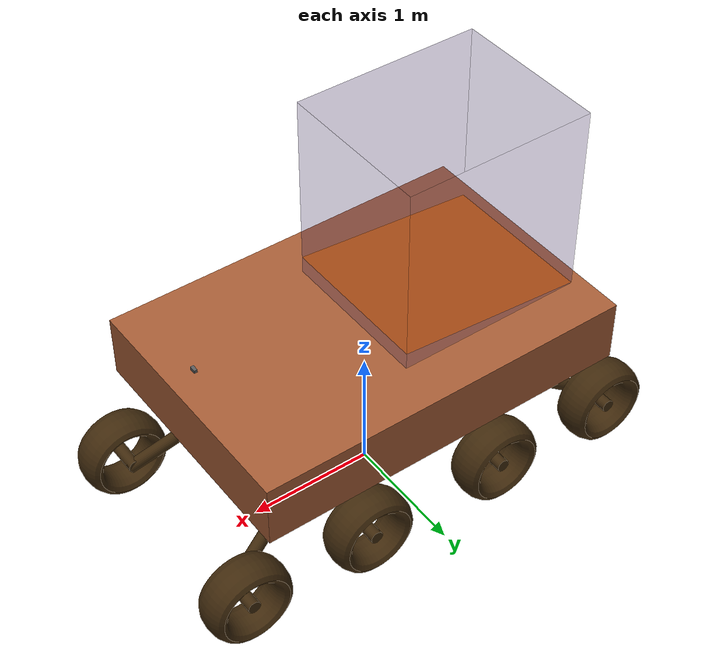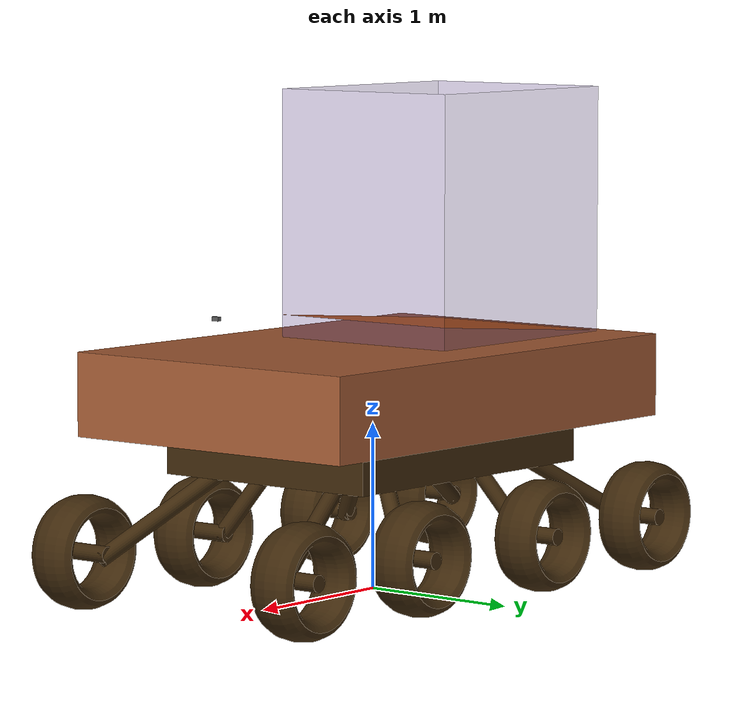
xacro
<?xml version="1.0"?>
<!-- created with Phobos 1.0.1 "Capricious Choutengan" -->
<robot name="robot" xmlns:xacro="http://wiki.ros.org/xacro">

    <link name="box_botton">
      <inertial>
        <origin xyz="0 0 0" rpy="0 0 0"/>
        <mass value="100.0"/>
        <inertia ixx="0.001" ixy="0" ixz="0" iyy="0.001" iyz="0" izz="0.001"/>
      </inertial>
      <visual name="Cube.001">
        <origin xyz="0 0 0" rpy="0 0 0"/>
        <geometry>
          <box size="2.0 1.5 0.5"/>
        </geometry>
        <material name="Material.001"/>
      </visual>
      <collision name="Cube.001">
        <origin xyz="0 0 0" rpy="0 0 0"/>
        <geometry>
          <box size="2.0 1.5 0.5"/>
        </geometry>
      </collision>
    </link>

    <link name="base_link">
      <inertial>
        <origin xyz="0 0 0" rpy="0 0 0"/>
        <mass value="150.0"/>
        <inertia ixx="0.001" ixy="0" ixz="0" iyy="0.001" iyz="0" izz="0.001"/>
      </inertial>
      <visual name="Cube">
        <origin xyz="0 0 0" rpy="0 0 0"/>
        <geometry>
          <box size="3.0 2.0 0.5"/>
        </geometry>
        <material name="Material"/>
      </visual>
      <collision name="Cube">
        <origin xyz="0 0 0" rpy="0 0 0"/>
        <geometry>
          <box size="3.0 2.0 0.5"/>
        </geometry>
      </collision>
    </link>

    <link name="base_footprint">
      <inertial>
        <origin xyz="0 0 0" rpy="0 0 0"/>
        <mass value="0.1"/>
        <inertia ixx="0.001" ixy="0" ixz="0" iyy="0.001" iyz="0" izz="0.001"/>
      </inertial>
    </link>

    <link name="c2_felt_front_back_">
      <inertial>
        <origin xyz="0 0 0" rpy="0 0 0"/>
        <mass value="1.5"/>
        <inertia ixx="0.001" ixy="0" ixz="0" iyy="0.001" iyz="0" izz="0.001"/>
      </inertial>
      <visual name="left_front_back2">
        <origin xyz="0 0 0" rpy="0 0 0"/>
        <geometry>
          <cylinder radius="0.05" length="0.3"/>
        </geometry>
        <material name="Material.001"/>
      </visual>
      <collision name="left_front_back2">
        <origin xyz="0 0 0" rpy="0 0 0"/>
        <geometry>
          <box size="0.1 0.1 0.3"/>
        </geometry>
      </collision>
    </link>

    <link name="c2_left_back_back_">
      <inertial>
        <origin xyz="0 0 0" rpy="0 0 0"/>
        <mass value="1.5"/>
        <inertia ixx="0.001" ixy="0" ixz="0" iyy="0.001" iyz="0" izz="0.001"/>
      </inertial>
      <visual name="left_back_back2">
        <origin xyz="0 0 0" rpy="0 0 0"/>
        <geometry>
          <cylinder radius="0.05" length="0.3"/>
        </geometry>
        <material name="Material.001"/>
      </visual>
      <collision name="left_back_back2">
        <origin xyz="0 0 0" rpy="0 0 0"/>
        <geometry>
          <box size="0.1 0.1 0.3"/>
        </geometry>
      </collision>
    </link>

    <link name="c2_left_back_front_">
      <inertial>
        <origin xyz="0 0 0" rpy="0 0 0"/>
        <mass value="1.5"/>
        <inertia ixx="0.001" ixy="0" ixz="0" iyy="0.001" iyz="0" izz="0.001"/>
      </inertial>
      <visual name="left_back_front2">
        <origin xyz="0 0 0" rpy="0 0 0"/>
        <geometry>
          <cylinder radius="0.05" length="0.3"/>
        </geometry>
        <material name="Material.001"/>
      </visual>
      <collision name="left_back_front2">
        <origin xyz="0 0 0" rpy="0 0 0"/>
        <geometry>
          <box size="0.1 0.1 0.3"/>
        </geometry>
      </collision>
    </link>

    <link name="c2_left_front_front_">
      <inertial>
        <origin xyz="0 0 0" rpy="0 0 0"/>
        <mass value="1.5"/>
        <inertia ixx="0.001" ixy="0" ixz="0" iyy="0.001" iyz="0" izz="0.001"/>
      </inertial>
      <visual name="left_front_front2">
        <origin xyz="0 0 0" rpy="0 0 0"/>
        <geometry>
          <cylinder radius="0.05" length="0.3"/>
        </geometry>
        <material name="Material.001"/>
      </visual>
      <collision name="left_front_front2">
        <origin xyz="0 0 0" rpy="0 0 0"/>
        <geometry>
          <box size="0.1 0.1 0.3"/>
        </geometry>
      </collision>
    </link>

    <link name="c2_right_back_back">
      <inertial>
        <origin xyz="0 0 0" rpy="0 0 0"/>
        <mass value="1.5"/>
        <inertia ixx="0.001" ixy="0" ixz="0" iyy="0.001" iyz="0" izz="0.001"/>
      </inertial>
      <visual name="right_back_back2">
        <origin xyz="0 0 0" rpy="-3.14159 0 0"/>
        <geometry>
          <cylinder radius="0.05" length="0.3"/>
        </geometry>
        <material name="Material.001"/>
      </visual>
      <collision name="right_back_back2">
        <origin xyz="0 0 0" rpy="-3.14159 0 0"/>
        <geometry>
          <box size="0.1 0.1 0.3"/>
        </geometry>
      </collision>
    </link>

    <link name="c2_right_back_front">
      <inertial>
        <origin xyz="0 0 0" rpy="0 0 0"/>
        <mass value="1.5"/>
        <inertia ixx="0.001" ixy="0" ixz="0" iyy="0.001" iyz="0" izz="0.001"/>
      </inertial>
      <visual name="right_back_front2">
        <origin xyz="0 0 0" rpy="-3.14159 0 0"/>
        <geometry>
          <cylinder radius="0.05" length="0.3"/>
        </geometry>
        <material name="Material.001"/>
      </visual>
      <collision name="right_back_front2">
        <origin xyz="0 0 0" rpy="-3.14159 0 0"/>
        <geometry>
          <box size="0.1 0.1 0.3"/>
        </geometry>
      </collision>
    </link>

    <link name="c2_right_front_back">
      <inertial>
        <origin xyz="0 0 0" rpy="0 0 0"/>
        <mass value="1.5"/>
        <inertia ixx="0.001" ixy="0" ixz="0" iyy="0.001" iyz="0" izz="0.001"/>
      </inertial>
      <visual name="right_front_back2">
        <origin xyz="0 0 0" rpy="-3.14159 0 0"/>
        <geometry>
          <cylinder radius="0.05" length="0.3"/>
        </geometry>
        <material name="Material.001"/>
      </visual>
      <collision name="right_front_back2">
        <origin xyz="0 0 0" rpy="-3.14159 0 0"/>
        <geometry>
          <box size="0.1 0.1 0.3"/>
        </geometry>
      </collision>
    </link>

    <link name="c2_right_front_front">
      <inertial>
        <origin xyz="0 0 0" rpy="0 0 0"/>
        <mass value="1.5"/>
        <inertia ixx="0.001" ixy="0" ixz="0" iyy="0.001" iyz="0" izz="0.001"/>
      </inertial>
      <visual name="right_front_front2">
        <origin xyz="0 0 0" rpy="-3.14159 0 0"/>
        <geometry>
          <cylinder radius="0.05" length="0.3"/>
        </geometry>
        <material name="Material.001"/>
      </visual>
      <collision name="right_front_front2">
        <origin xyz="0 0 0" rpy="-3.14159 0 0"/>
        <geometry>
          <box size="0.1 0.1 0.3"/>
        </geometry>
      </collision>
    </link>

    <link name="c_left_back_back_">
      <inertial>
        <origin xyz="0 0 0" rpy="0 0 0"/>
        <mass value="1.5"/>
        <inertia ixx="0.001" ixy="0" ixz="0" iyy="0.001" iyz="0" izz="0.001"/>
      </inertial>
      <visual name="Cylinder.002">
        <origin xyz="0 0 0" rpy="0 0 0"/>
        <geometry>
          <cylinder radius="0.05" length="0.94"/>
        </geometry>
        <material name="Material.001"/>
      </visual>
      <collision name="Cylinder.002">
        <origin xyz="0 0 0" rpy="0 0 0"/>
        <geometry>
          <box size="0.1 0.1 0.94"/>
        </geometry>
      </collision>
    </link>

    <link name="c_left_back_front_">
      <inertial>
        <origin xyz="0 0 0" rpy="0 0 0"/>
        <mass value="1.5"/>
        <inertia ixx="0.001" ixy="0" ixz="0" iyy="0.001" iyz="0" izz="0.001"/>
      </inertial>
      <visual name="Cylinder.005">
        <origin xyz="0 0 0" rpy="0 0 0"/>
        <geometry>
          <cylinder radius="0.05" length="0.55"/>
        </geometry>
        <material name="Material.001"/>
      </visual>
      <collision name="Cylinder.005">
        <origin xyz="0 0 0" rpy="0 0 0"/>
        <geometry>
          <box size="0.1 0.1 0.55"/>
        </geometry>
      </collision>
    </link>

    <link name="c_left_front_back_">
      <inertial>
        <origin xyz="0 0 0" rpy="0 0 0"/>
        <mass value="1.5"/>
        <inertia ixx="0.001" ixy="0" ixz="0" iyy="0.001" iyz="0" izz="0.001"/>
      </inertial>
      <visual name="Cylinder.004">
        <origin xyz="0 0 0" rpy="0 0 0"/>
        <geometry>
          <cylinder radius="0.05" length="0.55"/>
        </geometry>
        <material name="Material.001"/>
      </visual>
      <collision name="Cylinder.004">
        <origin xyz="0 0 0" rpy="0 0 0"/>
        <geometry>
          <box size="0.1 0.1 0.55"/>
        </geometry>
      </collision>
    </link>

    <link name="c_left_front_front_">
      <inertial>
        <origin xyz="0 0 0" rpy="0 0 0"/>
        <mass value="1.5"/>
        <inertia ixx="0.001" ixy="0" ixz="0" iyy="0.001" iyz="0" izz="0.001"/>
      </inertial>
      <visual name="Cylinder">
        <origin xyz="0 0 0" rpy="0 0 0"/>
        <geometry>
          <cylinder radius="0.05" length="0.94"/>
        </geometry>
        <material name="Material.001"/>
      </visual>
      <collision name="Cylinder">
        <origin xyz="0 0 0" rpy="0 0 0"/>
        <geometry>
          <box size="0.1 0.1 0.94"/>
        </geometry>
      </collision>
    </link>

    <link name="c_right_back_back_">
      <inertial>
        <origin xyz="0 0 0" rpy="0 0 0"/>
        <mass value="1.5"/>
        <inertia ixx="0.001" ixy="0" ixz="0" iyy="0.001" iyz="0" izz="0.001"/>
      </inertial>
      <visual name="Cylinder.001">
        <origin xyz="0 0 0" rpy="0 0 0"/>
        <geometry>
          <cylinder radius="0.05" length="0.94"/>
        </geometry>
        <material name="Material.001"/>
      </visual>
      <collision name="Cylinder.001">
        <origin xyz="0 0 0" rpy="0 0 0"/>
        <geometry>
          <box size="0.1 0.1 0.94"/>
        </geometry>
      </collision>
    </link>

    <link name="c_right_back_front_">
      <inertial>
        <origin xyz="0 0 0" rpy="0 0 0"/>
        <mass value="1.5"/>
        <inertia ixx="0.001" ixy="0" ixz="0" iyy="0.001" iyz="0" izz="0.001"/>
      </inertial>
      <visual name="Cylinder.006">
        <origin xyz="0 0 0" rpy="0 0 0"/>
        <geometry>
          <cylinder radius="0.05" length="0.55"/>
        </geometry>
        <material name="Material.001"/>
      </visual>
      <collision name="Cylinder.006">
        <origin xyz="0 0 0" rpy="0 0 0"/>
        <geometry>
          <box size="0.1 0.1 0.55"/>
        </geometry>
      </collision>
    </link>

    <link name="c_right_front_back">
      <inertial>
        <origin xyz="0 0 0" rpy="0 0 0"/>
        <mass value="1.5"/>
        <inertia ixx="0.001" ixy="0" ixz="0" iyy="0.001" iyz="0" izz="0.001"/>
      </inertial>
      <visual name="Cylinder.007">
        <origin xyz="0 0 0" rpy="0 0 0"/>
        <geometry>
          <cylinder radius="0.05" length="0.55"/>
        </geometry>
        <material name="Material.001"/>
      </visual>
      <collision name="Cylinder.007">
        <origin xyz="0 0 0" rpy="0 0 0"/>
        <geometry>
          <box size="0.1 0.1 0.55"/>
        </geometry>
      </collision>
    </link>

    <link name="c_right_front_front_">
      <inertial>
        <origin xyz="0 0 0" rpy="0 0 0"/>
        <mass value="1.5"/>
        <inertia ixx="0.001" ixy="0" ixz="0" iyy="0.001" iyz="0" izz="0.001"/>
      </inertial>
      <visual name="Cylinder.003">
        <origin xyz="0 0 0" rpy="0 0 0"/>
        <geometry>
          <cylinder radius="0.05" length="0.94"/>
        </geometry>
        <material name="Material.001"/>
      </visual>
      <collision name="Cylinder.003">
        <origin xyz="0 0 0" rpy="0 0 0"/>
        <geometry>
          <box size="0.1 0.1 0.94"/>
        </geometry>
      </collision>
    </link>

    <link name="wall_back_">
      <inertial>
        <origin xyz="0 0 0" rpy="0 0 0"/>
        <mass value="0.1"/>
        <inertia ixx="0.001" ixy="0" ixz="0" iyy="0.001" iyz="0" izz="0.001"/>
      </inertial>
      <visual name="wall_back">
        <origin xyz="0 0 0" rpy="0 0 0"/>
        <geometry>
          <box size="1.5 1.25 0"/>
        </geometry>
        <material name="phobos_controller"/>
      </visual>
      <collision name="wall_back">
        <origin xyz="0 0 0" rpy="0 0 0"/>
        <geometry>
          <box size="1.5 1.25 0"/>
        </geometry>
      </collision>
    </link>

    <link name="wall_left_">
      <inertial>
        <origin xyz="0 0 0" rpy="0 0 0"/>
        <mass value="0.1"/>
        <inertia ixx="0.001" ixy="0" ixz="0" iyy="0.001" iyz="0" izz="0.001"/>
      </inertial>
      <visual name="wall_left">
        <origin xyz="0 0 0" rpy="0 0 0"/>
        <geometry>
          <box size="1.5 1.5 0"/>
        </geometry>
        <material name="phobos_controller"/>
      </visual>
      <collision name="wall_left">
        <origin xyz="0 0 0" rpy="0 0 0"/>
        <geometry>
          <box size="1.5 1.5 0"/>
        </geometry>
      </collision>
    </link>

    <link name="wall_ramp_">
      <inertial>
        <origin xyz="0 0 0" rpy="0 0 0"/>
        <mass value="0.1"/>
        <inertia ixx="0.001" ixy="0" ixz="0" iyy="0.001" iyz="0" izz="0.001"/>
      </inertial>
      <visual name="wall_ramp">
        <origin xyz="0 0 0" rpy="0 0 0"/>
        <geometry>
          <box size="1.505 1.25 0"/>
        </geometry>
      </visual>
      <collision name="wall_ramp">
        <origin xyz="0 0 0" rpy="0 0 0"/>
        <geometry>
          <box size="1.505 1.25 0"/>
        </geometry>
      </collision>
    </link>

    <link name="wall_right_">
      <inertial>
        <origin xyz="0 0 0" rpy="0 0 0"/>
        <mass value="0.1"/>
        <inertia ixx="0.001" ixy="0" ixz="0" iyy="0.001" iyz="0" izz="0.001"/>
      </inertial>
      <visual name="wall_right">
        <origin xyz="0 0 0" rpy="0 0 0"/>
        <geometry>
          <box size="1.5 1.5 0"/>
        </geometry>
        <material name="phobos_controller"/>
      </visual>
      <collision name="wall_right">
        <origin xyz="0 0 0" rpy="0 0 0"/>
        <geometry>
          <box size="1.5 1.5 0"/>
        </geometry>
      </collision>
    </link>

    <link name="wall_top_">
      <inertial>
        <origin xyz="0 0 0" rpy="0 0 0"/>
        <mass value="0.1"/>
        <inertia ixx="0.001" ixy="0" ixz="0" iyy="0.001" iyz="0" izz="0.001"/>
      </inertial>
      <visual name="wall_top">
        <origin xyz="0 0 0" rpy="0 0 0"/>
        <geometry>
          <box size="1.5 1.25 0"/>
        </geometry>
        <material name="phobos_controller"/>
      </visual>
      <collision name="wall_top">
        <origin xyz="0 0 0" rpy="0 0 0"/>
        <geometry>
          <box size="1.5 1.25 0"/>
        </geometry>
      </collision>
    </link>

    <link name="wheel_left_back_back_">
      <inertial>
        <origin xyz="0 0 0" rpy="0 0 0"/>
        <mass value="10.0"/>
        <inertia ixx="0.001" ixy="0" ixz="0" iyy="0.001" iyz="0" izz="0.001"/>
      </inertial>
      <visual name="wheel_left_back_back">
        <origin xyz="0 0 0" rpy="-3.14159 0 0"/>
        <geometry>
          <mesh filename="file://$(find practica3)/meshes/dae/Torus.003.dae" scale="0.27 0.27 0.6"/>
        </geometry>
        <material name="Material.001"/>
      </visual>
      <collision name="wheel_left_back_back.000">
        <origin xyz="0 0 0" rpy="-3.14159 0 0"/>
        <geometry>
          <mesh filename="file://$(find practica3)/meshes/dae/Torus.011.dae" scale="1.0 1.0 1.0"/>
        </geometry>
      </collision>
    </link>

    <link name="wheel_left_back_front_">
      <inertial>
        <origin xyz="0 0 0" rpy="0 0 0"/>
        <mass value="10.0"/>
        <inertia ixx="0.001" ixy="0" ixz="0" iyy="0.001" iyz="0" izz="0.001"/>
      </inertial>
      <visual name="wheel_left_back_front">
        <origin xyz="0 0 0" rpy="-3.14159 0 0"/>
        <geometry>
          <mesh filename="file://$(find practica3)/meshes/dae/Torus.007.dae" scale="0.27 0.27 0.6"/>
        </geometry>
        <material name="Material.001"/>
      </visual>
      <collision name="wheel_left_back_front.000">
        <origin xyz="0 0 0" rpy="-3.14159 0 0"/>
        <geometry>
          <mesh filename="file://$(find practica3)/meshes/dae/Torus.010.dae" scale="1.0 1.0 1.0"/>
        </geometry>
      </collision>
    </link>

    <link name="wheel_left_front_back_">
      <inertial>
        <origin xyz="0 0 0" rpy="0 0 0"/>
        <mass value="10.0"/>
        <inertia ixx="0.001" ixy="0" ixz="0" iyy="0.001" iyz="0" izz="0.001"/>
      </inertial>
      <visual name="wheel_left_front_back">
        <origin xyz="0 0 0" rpy="-3.14159 0 0"/>
        <geometry>
          <mesh filename="file://$(find practica3)/meshes/dae/Torus.005.dae" scale="0.27 0.27 0.6"/>
        </geometry>
        <material name="Material.001"/>
      </visual>
      <collision name="wheel_left_front_back.000">
        <origin xyz="0 0 0" rpy="-3.14159 0 0"/>
        <geometry>
          <mesh filename="file://$(find practica3)/meshes/dae/Torus.009.dae" scale="1.0 1.0 1.0"/>
        </geometry>
      </collision>
    </link>

    <link name="wheel_left_front_front_">
      <inertial>
        <origin xyz="0 0 0" rpy="0 0 0"/>
        <mass value="10.0"/>
        <inertia ixx="0.001" ixy="0" ixz="0" iyy="0.001" iyz="0" izz="0.001"/>
      </inertial>
      <visual name="wheel_left_front_front">
        <origin xyz="0 0 0" rpy="-3.14159 0 0"/>
        <geometry>
          <mesh filename="file://$(find practica3)/meshes/dae/Torus.dae" scale="0.27 0.27 0.6"/>
        </geometry>
        <material name="Material.001"/>
      </visual>
      <collision name="wheel_left_front_front.000">
        <origin xyz="0 0 0" rpy="-3.14159 0 0"/>
        <geometry>
          <mesh filename="file://$(find practica3)/meshes/dae/Torus.008.dae" scale="1.0 1.0 1.0"/>
        </geometry>
      </collision>
    </link>

    <link name="wheel_right_back_back_">
      <inertial>
        <origin xyz="0 0 0" rpy="0 0 0"/>
        <mass value="10.0"/>
        <inertia ixx="0.001" ixy="0" ixz="0" iyy="0.001" iyz="0" izz="0.001"/>
      </inertial>
      <visual name="wheel_right_back_back">
        <origin xyz="0 0 0" rpy="0 0 0"/>
        <geometry>
          <mesh filename="file://$(find practica3)/meshes/dae/Torus.002.dae" scale="0.27 0.27 0.6"/>
        </geometry>
        <material name="Material.001"/>
      </visual>
      <collision name="wheel_right_back_back.000">
        <origin xyz="0 0 0" rpy="0 0 0"/>
        <geometry>
          <mesh filename="file://$(find practica3)/meshes/dae/Torus.012.dae" scale="1.0 1.0 1.0"/>
        </geometry>
      </collision>
    </link>

    <link name="wheel_right_back_front_">
      <inertial>
        <origin xyz="0 0 0" rpy="0 0 0"/>
        <mass value="10.0"/>
        <inertia ixx="0.001" ixy="0" ixz="0" iyy="0.001" iyz="0" izz="0.001"/>
      </inertial>
      <visual name="wheel_right_back_front">
        <origin xyz="0 0 0" rpy="0 0 0"/>
        <geometry>
          <mesh filename="file://$(find practica3)/meshes/dae/Torus.006.dae" scale="0.27 0.27 0.6"/>
        </geometry>
        <material name="Material.001"/>
      </visual>
      <collision name="wheel_right_back_front.000">
        <origin xyz="0 0 0" rpy="0 0 0"/>
        <geometry>
          <mesh filename="file://$(find practica3)/meshes/dae/Torus.013.dae" scale="1.0 1.0 1.0"/>
        </geometry>
      </collision>
    </link>

    <link name="wheel_right_front_back_">
      <inertial>
        <origin xyz="0 0 0" rpy="0 0 0"/>
        <mass value="10.0"/>
        <inertia ixx="0.001" ixy="0" ixz="0" iyy="0.001" iyz="0" izz="0.001"/>
      </inertial>
      <visual name="wheel_right_front_back">
        <origin xyz="0 0 0" rpy="0 0 0"/>
        <geometry>
          <mesh filename="file://$(find practica3)/meshes/dae/Torus.004.dae" scale="0.27 0.27 0.6"/>
        </geometry>
        <material name="Material.001"/>
      </visual>
      <collision name="wheel_right_front_back.000">
        <origin xyz="0 0 0" rpy="0 0 0"/>
        <geometry>
          <mesh filename="file://$(find practica3)/meshes/dae/Torus.014.dae" scale="1.0 1.0 1.0"/>
        </geometry>
      </collision>
    </link>

    <link name="wheel_right_front_front_">
      <inertial>
        <origin xyz="0 0 0" rpy="0 0 0"/>
        <mass value="10.0"/>
        <inertia ixx="0.001" ixy="0" ixz="0" iyy="0.001" iyz="0" izz="0.001"/>
      </inertial>
      <visual name="wheel_right_front_front">
        <origin xyz="0 0 0" rpy="0 0 0"/>
        <geometry>
          <mesh filename="file://$(find practica3)/meshes/dae/Torus.001.dae" scale="0.27 0.27 0.6"/>
        </geometry>
        <material name="Material.001"/>
      </visual>
      <collision name="wheel_right_front_front.000">
        <origin xyz="0 0 0" rpy="0 0 0"/>
        <geometry>
          <mesh filename="file://$(find practica3)/meshes/dae/Torus.015.dae" scale="0.27 0.27 0.6"/>
        </geometry>
      </collision>
    </link>

    <joint name="base_link_" type="fixed">
      <origin xyz="0 0 1.235" rpy="0 0 0"/>
      <parent link="base_footprint"/>
      <child link="base_link"/>
    </joint>

    <joint name="box_botton" type="fixed">
      <origin xyz="0 0 -0.25" rpy="0 0 0"/>
      <parent link="base_link"/>
      <child link="box_botton"/>
    </joint>

    <joint name="c2_felt_front_back_" type="fixed">
      <origin xyz="0.58 0.8 -0.9" rpy="1.5708 0 0"/>
      <parent link="base_link"/>
      <child link="c2_felt_front_back_"/>
    </joint>

    <joint name="c2_left_back_back_" type="fixed">
      <origin xyz="-1.62 0.8 -0.9" rpy="1.5708 0 0"/>
      <parent link="base_link"/>
      <child link="c2_left_back_back_"/>
    </joint>

    <joint name="c2_left_back_front_" type="fixed">
      <origin xyz="-0.58 0.8 -0.9" rpy="1.5708 0 0"/>
      <parent link="base_link"/>
      <child link="c2_left_back_front_"/>
    </joint>

    <joint name="c2_left_front_front_" type="fixed">
      <origin xyz="1.62 0.8 -0.9" rpy="1.5708 0 0"/>
      <parent link="base_link"/>
      <child link="c2_left_front_front_"/>
    </joint>

    <joint name="c2_right_back_back" type="fixed">
      <origin xyz="-1.62 -0.8 -0.9" rpy="-1.5708 0 0"/>
      <parent link="base_link"/>
      <child link="c2_right_back_back"/>
    </joint>

    <joint name="c2_right_back_front" type="fixed">
      <origin xyz="-0.58 -0.8 -0.9" rpy="-1.5708 0 0"/>
      <parent link="base_link"/>
      <child link="c2_right_back_front"/>
    </joint>

    <joint name="c2_right_front_back" type="fixed">
      <origin xyz="0.58 -0.8 -0.9" rpy="-1.5708 0 0"/>
      <parent link="base_link"/>
      <child link="c2_right_front_back"/>
    </joint>

    <joint name="c2_right_front_front" type="fixed">
      <origin xyz="1.62 -0.8 -0.9" rpy="-1.5708 0 0"/>
      <parent link="base_link"/>
      <child link="c2_right_front_front"/>
    </joint>

    <joint name="c_left_back_back_" type="fixed">
      <origin xyz="-1.25 0.57 -0.7" rpy="0.2618 1.0472 0"/>
      <parent link="base_link"/>
      <child link="c_left_back_back_"/>
    </joint>

    <joint name="c_left_back_front_" type="fixed">
      <origin xyz="-0.5 0.57 -0.7" rpy="0.5236 0.34907 0"/>
      <parent link="base_link"/>
      <child link="c_left_back_front_"/>
    </joint>

    <joint name="c_left_front_back_" type="fixed">
      <origin xyz="0.5 0.57 -0.7" rpy="0.5236 -0.34907 0"/>
      <parent link="base_link"/>
      <child link="c_left_front_back_"/>
    </joint>

    <joint name="c_left_front_front_" type="fixed">
      <origin xyz="1.25 0.57 -0.7" rpy="0.2618 -1.0472 0"/>
      <parent link="base_link"/>
      <child link="c_left_front_front_"/>
    </joint>

    <joint name="c_right_back_back_" type="fixed">
      <origin xyz="-1.25 -0.57 -0.7" rpy="-0.2618 1.0472 0"/>
      <parent link="base_link"/>
      <child link="c_right_back_back_"/>
    </joint>

    <joint name="c_right_back_front_" type="fixed">
      <origin xyz="-0.5 -0.57 -0.7" rpy="-0.5236 0.34907 0"/>
      <parent link="base_link"/>
      <child link="c_right_back_front_"/>
    </joint>

    <joint name="c_right_front_back" type="fixed">
      <origin xyz="0.5 -0.57 -0.7" rpy="-0.5236 -0.34907 0"/>
      <parent link="base_link"/>
      <child link="c_right_front_back"/>
    </joint>

    <joint name="c_right_front_front_" type="fixed">
      <origin xyz="1.25 -0.57 -0.7" rpy="-0.2618 -1.0472 0"/>
      <parent link="base_link"/>
      <child link="c_right_front_front_"/>
    </joint>

    <joint name="wall_back_" type="fixed">
      <origin xyz="-1.4 0 1.0" rpy="0 1.5708 0"/>
      <parent link="base_link"/>
      <child link="wall_back_"/>
    </joint>

    <joint name="wall_left_" type="fixed">
      <origin xyz="-0.65 0.625 1.0" rpy="1.5708 0 0"/>
      <parent link="base_link"/>
      <child link="wall_left_"/>
    </joint>

    <joint name="wall_ramp_" type="fixed">
      <origin xyz="-0.65 0 0.32" rpy="0 -0.08727 0"/>
      <parent link="base_link"/>
      <child link="wall_ramp_"/>
    </joint>

    <joint name="wall_right_" type="fixed">
      <origin xyz="-0.65 -0.625 1.0" rpy="-1.5708 0 0"/>
      <parent link="base_link"/>
      <child link="wall_right_"/>
    </joint>

    <joint name="wall_top_" type="fixed">
      <origin xyz="0.1 0 1.0" rpy="0 1.5708 0"/>
      <parent link="base_link"/>
      <child link="wall_top_"/>
    </joint>

    <joint name="wheel_left_back_back__" type="continuous">
      <origin xyz="-1.62 0.84 -0.9" rpy="-1.5708 0 0"/>
      <parent link="base_link"/>
      <child link="wheel_left_back_back_"/>
      <axis xyz="0 0 1.0"/>
      <limit effort="0" velocity="0"/>
    </joint>

    <transmission name="wheel_left_back_back__trans">
        <type>transmission_interface/SimpleTransmission</type>
        <joint name="wheel_left_back_back__" >
            <hardwareInterface>hardware_interface/VelocityJointInterface</hardwareInterface>
        </joint>
        <actuator name="wheel_left_back_back__motor">
            <mechanicalReduction>1</mechanicalReduction>
        </actuator>
    </transmission>

    <gazebo reference="wheel_left_back_back_">
        <mu1>5</mu1>
        <mu2>5</mu2>
    </gazebo>

    <joint name="wheel_left_back_front__" type="continuous">
      <origin xyz="-0.58 0.84 -0.9" rpy="-1.5708 0 0"/>
      <parent link="base_link"/>
      <child link="wheel_left_back_front_"/>
      <axis xyz="0 0 1.0"/>
      <limit effort="0" velocity="0"/>
    </joint>

    <transmission name="wheel_left_back_front__trans">
        <type>transmission_interface/SimpleTransmission</type>
        <joint name="wheel_left_back_front__" >
            <hardwareInterface>hardware_interface/VelocityJointInterface</hardwareInterface>
        </joint>
        <actuator name="wheel_left_back_front__motor">
            <mechanicalReduction>1</mechanicalReduction>
        </actuator>
    </transmission>

    <gazebo reference="wheel_left_back_front_">
        <mu1>5</mu1>
        <mu2>5</mu2>
    </gazebo>

    <joint name="wheel_left_front_back__" type="continuous">
      <origin xyz="0.58 0.84 -0.9" rpy="-1.5708 0 0"/>
      <parent link="base_link"/>
      <child link="wheel_left_front_back_"/>
      <axis xyz="0 0 1.0"/>
      <limit effort="0" velocity="0"/>
    </joint>

    <transmission name="wheel_left_front_back__trans">
        <type>transmission_interface/SimpleTransmission</type>
        <joint name="wheel_left_front_back__" >
            <hardwareInterface>hardware_interface/VelocityJointInterface</hardwareInterface>
        </joint>
        <actuator name="wheel_left_front_back__motor">
            <mechanicalReduction>1</mechanicalReduction>
        </actuator>
    </transmission>

    <gazebo reference="wheel_left_front_back_">
        <mu1>5</mu1>
        <mu2>5</mu2>
    </gazebo>

    <joint name="wheel_left_front_front__" type="continuous">
      <origin xyz="1.62 0.84 -0.9" rpy="-1.5708 0 0"/>
      <parent link="base_link"/>
      <child link="wheel_left_front_front_"/>
      <axis xyz="0 0 1.0"/>
      <limit effort="0" velocity="0"/>
    </joint>

    <transmission name="wheel_left_front_front__trans">
        <type>transmission_interface/SimpleTransmission</type>
        <joint name="wheel_left_front_front__" >
            <hardwareInterface>hardware_interface/VelocityJointInterface</hardwareInterface>
        </joint>
        <actuator name="wheel_left_front_front__motor">
            <mechanicalReduction>1</mechanicalReduction>
        </actuator>
    </transmission>

    <gazebo reference="wheel_left_front_front_">
        <mu1>5</mu1>
        <mu2>5</mu2>
    </gazebo>

    <joint name="wheel_right_back_back__" type="continuous">
      <origin xyz="-1.62 -0.84 -0.9" rpy="-1.5708 0 3.14159"/>
      <parent link="base_link"/>
      <child link="wheel_right_back_back_"/>
      <axis xyz="0 0 1.0"/>
      <limit effort="0" velocity="0"/>
    </joint>

    <transmission name="wheel_right_back_back__trans">
        <type>transmission_interface/SimpleTransmission</type>
        <joint name="wheel_right_back_back__" >
            <hardwareInterface>hardware_interface/VelocityJointInterface</hardwareInterface>
        </joint>
        <actuator name="wheel_right_back_back__motor">
            <mechanicalReduction>1</mechanicalReduction>
        </actuator>
    </transmission>

    <gazebo reference="wheel_right_back_back_">
        <mu1>5</mu1>
        <mu2>5</mu2>
    </gazebo>

    <joint name="wheel_right_back_front__" type="continuous">
      <origin xyz="-0.58 -0.84 -0.9" rpy="-1.5708 0 3.14159"/>
      <parent link="base_link"/>
      <child link="wheel_right_back_front_"/>
      <axis xyz="0 0 1.0"/>
      <limit effort="0" velocity="0"/>
    </joint>

    <transmission name="wheel_right_back_front__trans">
        <type>transmission_interface/SimpleTransmission</type>
        <joint name="wheel_right_back_front__" >
            <hardwareInterface>hardware_interface/VelocityJointInterface</hardwareInterface>
        </joint>
        <actuator name="wheel_right_back_front__motor">
            <mechanicalReduction>1</mechanicalReduction>
        </actuator>
    </transmission>

    <gazebo reference="wheel_right_back_front_">
        <mu1>5</mu1>
        <mu2>5</mu2>
    </gazebo>

    <joint name="wheel_right_front_back__" type="continuous">
      <origin xyz="0.58 -0.84 -0.9" rpy="-1.5708 0 3.14159"/>
      <parent link="base_link"/>
      <child link="wheel_right_front_back_"/>
      <axis xyz="0 0 1.0"/>
      <limit effort="0" velocity="0"/>
    </joint>

    <transmission name="wheel_right_front_back__trans">
        <type>transmission_interface/SimpleTransmission</type>
        <joint name="wheel_right_front_back__" >
            <hardwareInterface>hardware_interface/VelocityJointInterface</hardwareInterface>
        </joint>
        <actuator name="wheel_right_front_back__motor">
            <mechanicalReduction>1</mechanicalReduction>
        </actuator>
    </transmission>

    <gazebo reference="wheel_right_front_back_">
        <mu1>5</mu1>
        <mu2>5</mu2>
    </gazebo>

    <joint name="wheel_right_front_front__" type="continuous">
      <origin xyz="1.62 -0.84 -0.9" rpy="-1.5708 0 3.14159"/>
      <parent link="base_link"/>
      <child link="wheel_right_front_front_"/>
      <axis xyz="0 0 1.0"/>
      <limit effort="0" velocity="0"/>
    </joint>

    <transmission name="wheel_right_front_front__trans">
        <type>transmission_interface/SimpleTransmission</type>
        <joint name="wheel_right_front_front__" >
            <hardwareInterface>hardware_interface/VelocityJointInterface</hardwareInterface>
        </joint>
        <actuator name="wheel_right_front_front__motor">
            <mechanicalReduction>1</mechanicalReduction>
        </actuator>
    </transmission>

    <gazebo reference="wheel_right_front_front_">
        <mu1>5</mu1>
        <mu2>5</mu2>
    </gazebo>

    <xacro:include filename="$(find practica3)/urdf/sensor_imu.urdf.xacro" />
    <xacro:arg name="robot_ns" default="" />
    <xacro:arg name="prefix" default="" />

    <xacro:sensor_camera node_name="front_camera" node_namespace="$(arg robot_ns)" frame_prefix="$(arg prefix)front_camera_" parent="$(arg prefix)base_link" >
    <origin xyz="1.4 0.0 0.5" rpy="0 0 0"/>
    </xacro:sensor_camera>
    <xacro:sensor_imu ns="$(arg robot_ns)" prefix="$(arg prefix)imu_" parent="$(arg prefix)base_link">
    <origin xyz="0.0 0.0 0.0" rpy="0 0 0"/>
    </xacro:sensor_imu>

    <material name="Material">
      <color rgba="0.64 0.35768 0.20581 1.0"/>
    </material>

    <material name="Material.001">
      <color rgba="0.24647 0.16006 0.04816 1.0"/>
    </material>

    <material name="phobos_controller">
      <color rgba="0.3626 0.2548 0.56 0.30000000000000004"/>
    </material>

    <material name="phobos_indicator5">
      <color rgba="1.0 1.0 0 1.0"/>
    </material>

    <!-- Gazebo ros control plugins -->
    <xacro:arg name="config_controllers" default="$(find practica3)/config/config.yaml"/>
    <xacro:arg name="update_rate" default="100"/>
    <xacro:include filename="$(find practica3)/urdf/gazebo_params.urdf"/>
    <xacro:ros2_control/>

  </robot>

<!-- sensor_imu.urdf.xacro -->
<robot xmlns:xacro="http://wiki.ros.org/xacro" name="sensors">
  <!--  ######## UTILS ########  -->
  <xacro:macro name="solid_cuboid_inertia" params="m w h d">
    <inertia ixx="${(m*(h*h+d*d))/12}" ixy="0" ixz="0" iyy="${(m*(w*w+d*d))/12}" iyz="0"
      izz="${(m*(w*w+h*h))/12}" />
  </xacro:macro>
  <!--  ######### IMU #########  -->
  <xacro:macro name="sensor_imu" params="prefix ns:='' topic:='imu/data' parent *origin">

    <joint name="${prefix}_joint" type="fixed">
      <axis xyz="1 0 0" />
      <!-- origin xyz="0 0 0.2825"/ -->
      <xacro:insert_block name="origin" />
      <parent link="${parent}" />
      <child link="${prefix}_link" />
    </joint>

    <link name="${prefix}_link">
      <inertial>
        <origin xyz="0.0 0 0.01" rpy="0 0 0" />
        <mass value="0.005" />
        <xacro:solid_cuboid_inertia m="0.005" w="0.001" h="0.001" d="0.001" />
      </inertial>
      <visual>
        <origin rpy="0 0 0" xyz="0 0 0" />
        <geometry>
          <box size="0.001 0.001 0.001" />
        </geometry>
      </visual>
    </link>

    <gazebo reference="${prefix}_link">
      <gravity>true</gravity>
      <sensor name="${prefix}_imu_sensor" type="imu">
        <always_on>true</always_on>
        <update_rate>100</update_rate>
        <visualize>true</visualize>
        <topic>__default_topic__</topic>
        <plugin filename="libgazebo_ros_imu_sensor.so" name="${prefix}_imu_plugin">
          <topicName>${topic}</topicName>
          <bodyName>${prefix}_link</bodyName>
          <updateRateHZ>100.0</updateRateHZ>
          <gaussianNoise>0.0</gaussianNoise>
          <xyzOffset>0 0 0</xyzOffset>
          <rpyOffset>0 0 0</rpyOffset>
          <frameName>${prefix}_link</frameName>
        </plugin>
        <pose>0 0 0 0 0 0</pose>
      </sensor>
    </gazebo>

  </xacro:macro>
  <!--  ####### CAMERA #######  -->
  <xacro:macro name="sensor_camera_generic"
    params="frame_prefix parent *origin node_name:=camera node_namespace:=${None} topic_prefix:=~/ horizontal_fov:=80 vertical_fov:=60 video_width:=1280 video_height:=720 video_fps:=30">
    <!--  node_namespace is used from node_name if not set  -->
    <xacro:if value="${node_namespace == None}">
      <xacro:property name="node_namespace" value="${node_name}" />
    </xacro:if>

    <joint name="${frame_prefix}camera_base_joint" type="fixed">
      <xacro:insert_block name="origin" />
      <parent link="${parent}" />
      <child link="${frame_prefix}camera_base_link" />
    </joint>

    <link name="${frame_prefix}camera_base_link">
      <visual>
        <origin xyz="0 0 0" rpy="0 0 0" />
        <geometry>
          <box size="0.025 0.05 0.025" />
        </geometry>
        <material name="light_grey">
          <color rgba="0.35 0.35 0.35 1" />
        </material>
      </visual>
      <collision>
        <origin xyz="0.0 0.0 0.0" rpy="0 0 0" />
        <geometry>
          <box size="0.025 0.05 0.025" />
        </geometry>
      </collision>
      <inertial>
        <mass value="0.135" />
        <origin xyz="0 0 0" />
        <xacro:solid_cuboid_inertia m="0.135" w="0.033" h="0.175" d="0.03" />
      </inertial>
    </link>

    <!--  Camera -->
    <joint name="${frame_prefix}camera_joint" type="fixed">
      <origin xyz="0.0 -0.06 0.0" rpy="0.0 0.0 0.0" />
      <parent link="${frame_prefix}camera_base_link" />
      <child link="${frame_prefix}camera_frame" />
    </joint>

    <link name="${frame_prefix}camera_frame" />

    <joint name="${frame_prefix}color_optical_joint" type="fixed">
      <origin xyz="0.0 0 0.0" rpy="${-pi/2} 0.0 ${-pi/2}" />
      <parent link="${frame_prefix}camera_frame" />
      <child link="${frame_prefix}camera_optical_frame" />
    </joint>

    <link name="${frame_prefix}camera_optical_frame" />

    <gazebo reference="${frame_prefix}camera_frame">
      <sensor name="${frame_prefix}sensor" type="camera">
        <pose>0.0 0.0 0.0 0.0 0.0 0.0</pose>
        <visualize>false</visualize>
        <update_rate>30</update_rate>
        <camera>
          <horizontal_fov>${radians(float(horizontal_fov))}</horizontal_fov>
          <vertical_fov>${radians(float(vertical_fov))}</vertical_fov>
          <image>
            <width>${video_width}</width>
            <height>${video_height}</height>
            <format>R8G8B8</format>
          </image>
          <clip>
            <near>0.10</near>
            <far>100.0</far>
          </clip>
          <noise>
            <type>gaussian</type>
            <mean>0.0</mean>
            <stddev>0.007</stddev>
          </noise>
        </camera>
        <plugin name="${node_name}_camera" filename="libgazebo_ros_camera.so">
          <ros>
            <namespace>${node_namespace}/${node_name}</namespace>
            <remapping>right/image_raw:=right/image_raw_color</remapping>
            <remapping>right/camera_info:=right/camera_info</remapping>
          </ros>
          <camera_name>camera1</camera_name>
          <frame_name>${node_namespace}/${frame_prefix}camera_optical_frame</frame_name>
        </plugin>
      </sensor>
    </gazebo>

  </xacro:macro>

  <xacro:macro name="sensor_camera"
    params="frame_prefix parent *origin node_namespace:=cameras node_name topic_prefix:=~/">
    <xacro:sensor_camera_generic frame_prefix="${frame_prefix}" parent="${parent}"
      node_namespace="${node_namespace}" node_name="${node_name}" topic_prefix="${topic_prefix}"
      horizontal_fov="110" vertical_fov="70" video_width="1920" video_height="1080" video_fps="30">
      <xacro:insert_block name="origin" />
    </xacro:sensor_camera_generic>
  </xacro:macro>

</robot>
